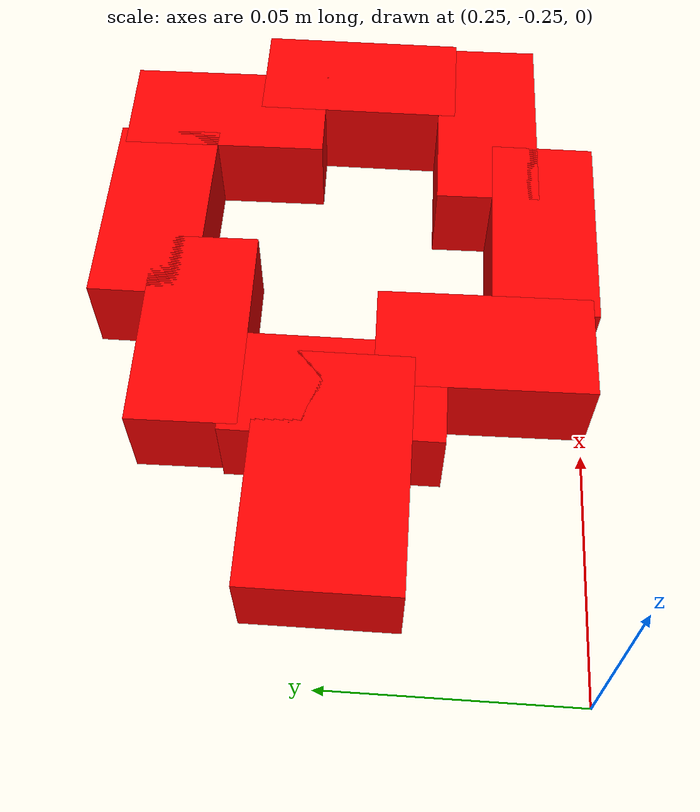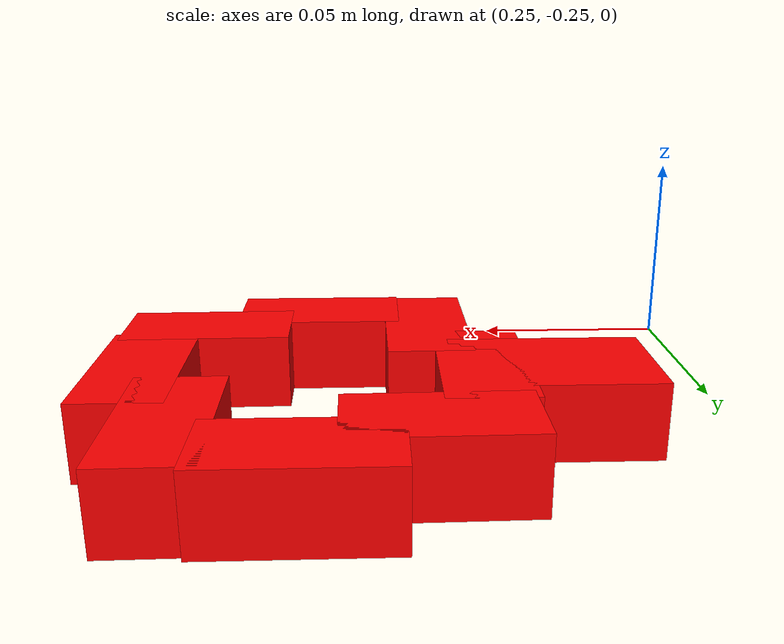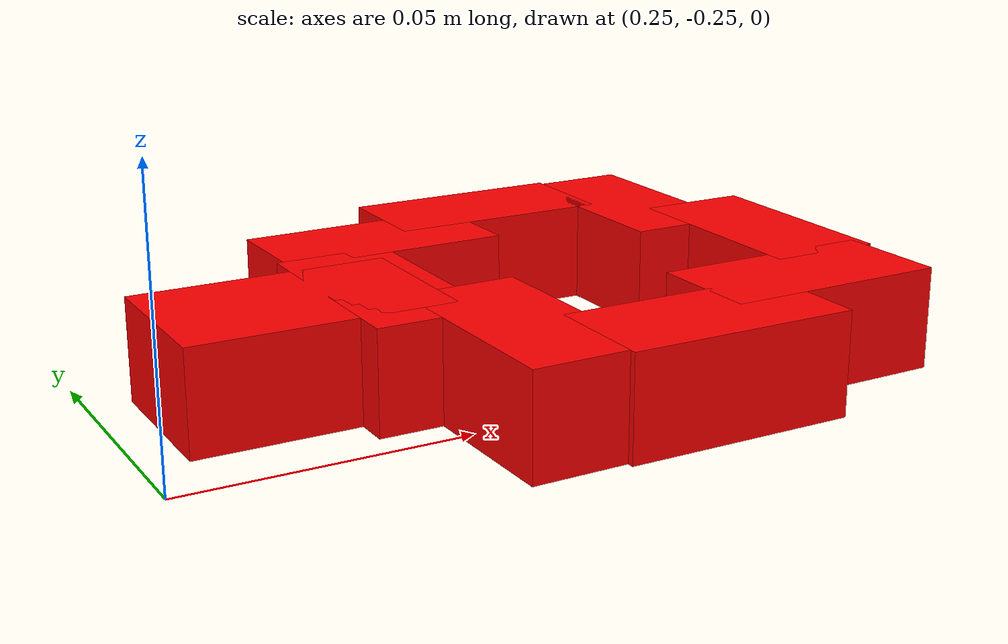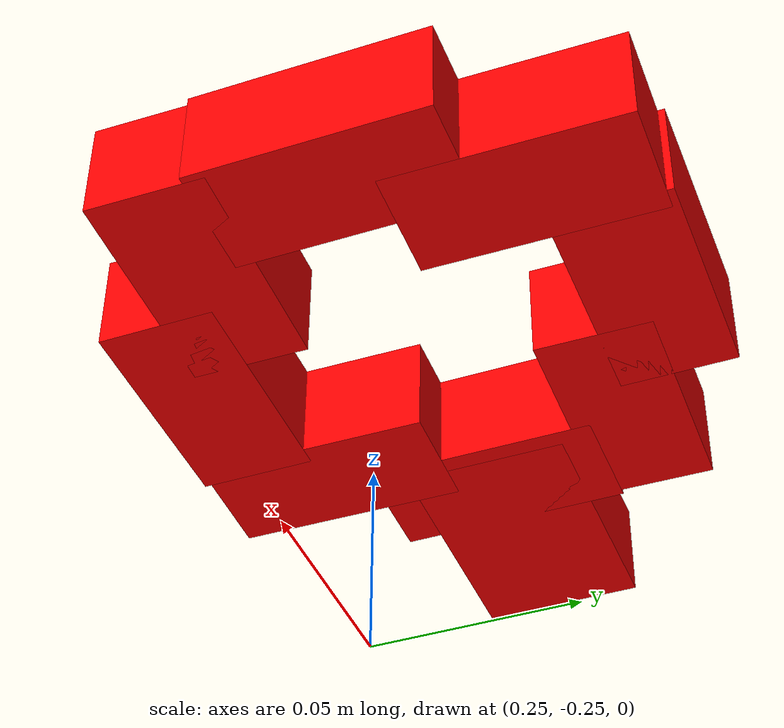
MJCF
<mujoco model="round-nut">
  <worldbody>
    <body name="round_nut" pos="0.35 -0.2 0." quat="0 0 0 1">
        <joint type="free" />
        <geom condim="4" density="100" friction="1.95 0.3 0.1" group="1" pos="-0.04245 0 0.0" rgba="1 0 0 1" size="0.01125 0.0225 0.01" solimp="0.998 0.998 0.001" solref="0.02 1" type="box" />
        <geom condim="4" density="100" friction="1.95 0.3 0.1" group="1" pos="0.04245 0 0.0" rgba="1 0 0 1" size="0.01125 0.0225 0.01" solimp="0.998 0.998 0.001" solref="0.02 1" type="box" />
        <geom condim="4" density="100" friction="1.95 0.3 0.1" group="1" pos="0 -0.04245 0.0" rgba="1 0 0 1" size="0.0225 0.01125 0.01" solimp="0.998 0.998 0.001" solref="0.02 1" type="box" />
        <geom condim="4" density="100" friction="1.95 0.3 0.1" group="1" pos="0 0.04245 0.0" rgba="1 0 0 1" size="0.0225 0.01125 0.01" solimp="0.998 0.998 0.001" solref="0.02 1" type="box" />
        <geom axisangle="0 0 1 0.785398" condim="4" density="100" friction="0.95 0.3 0.1" group="1" pos="-0.03 -0.03 0.0" rgba="1 0 0 1" size="0.01125 0.0225 0.01" solimp="0.998 0.998 0.001" solref="0.02 1" type="box" />
        <geom axisangle="0 0 1 0.785398" condim="4" density="100" friction="0.95 0.3 0.1" group="1" pos="0.03 0.03 0.0" rgba="1 0 0 1" size="0.01125 0.0225 0.01" solimp="0.998 0.998 0.001" solref="0.02 1" type="box" />
        <geom axisangle="0 0 1 0.785398" condim="4" density="100" friction="0.95 0.3 0.1" group="1" pos="0.03 -0.03 0.0" rgba="1 0 0 1" size="0.0225 0.01125 0.01" solimp="0.998 0.998 0.001" solref="0.02 1" type="box" />
        <geom axisangle="0 0 1 0.785398" condim="4" density="100" friction="0.95 0.3 0.1" group="1" pos="-0.03 0.03 0.0" rgba="1 0 0 1" size="0.0225 0.01125 0.01" solimp="0.998 0.998 0.001" solref="0.02 1" type="box" />
        <geom condim="4" density="100" friction="10 10 10" group="1" pos="0.06 0 0.0" rgba="1 0 0 1" size="0.02525 0.015875 0.01" solimp="0.998 0.998 0.001" solref="0.02 1" type="box" />
        <site name="round_nut:bottom_site" pos="0 0 -0.05" rgba="0 0 0 0" size="0.005" />
        <site name="round_nut:top_site" pos="0 0 0.025" rgba="0 0 0 0" size="0.005" />
        <site name="round_nut:horizontal_radius_site" pos="0.11 0.05 0" rgba="0 0 0 0" size="0.005" />
    </body>
  </worldbody>
</mujoco>
